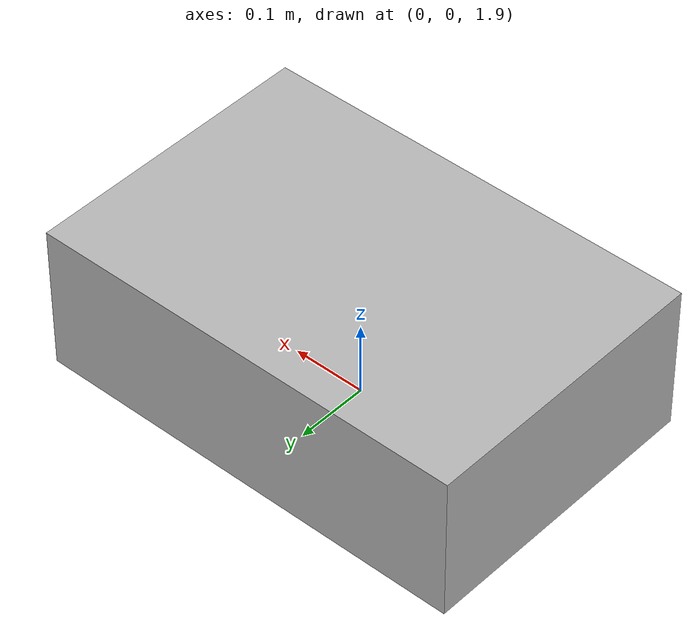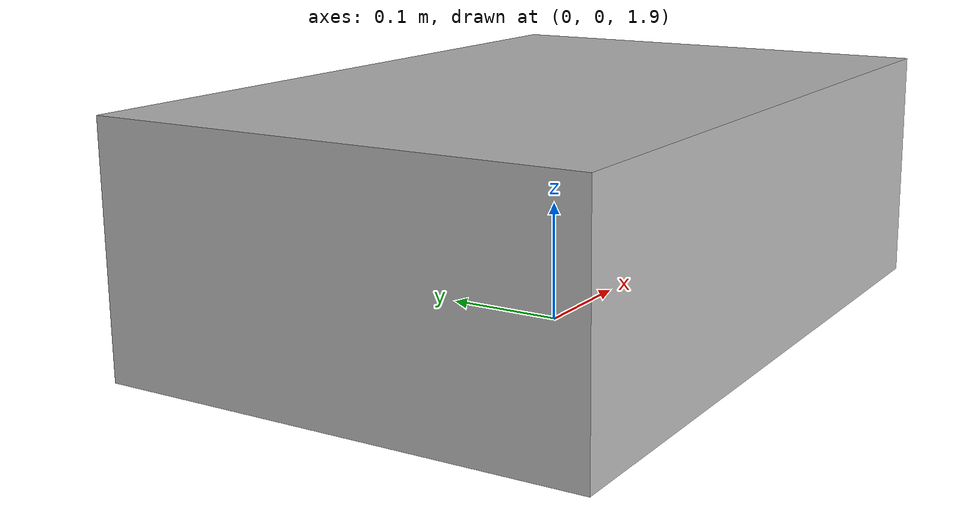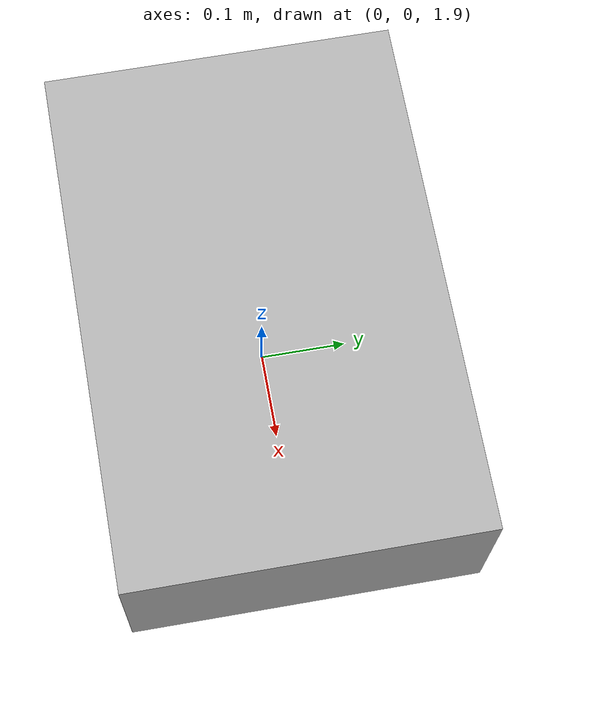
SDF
<?xml version="1.0" ?>
<sdf version="1.4">
  <world name="default">
    <include><uri>model://sun</uri></include>
    <physics type="rtql8">
      <gravity>0 0 -10.0</gravity>
      <ode>
        <solver>
          <type>quick</type>
          <dt>0.001</dt>
          <iters>10</iters>
          <sor>1.3</sor>
        </solver>
        <constraints>
          <cfm>0.0</cfm>
          <erp>0.2</erp>
          <contact_max_correcting_vel>100.0</contact_max_correcting_vel>
          <contact_surface_layer>0.0</contact_surface_layer>
        </constraints>
      </ode>
    </physics>
    <!-- 25.3kg total mass -->

    <model name="test_model">
      <pose>0 0 2 0 1.57 0</pose>
      <link name="link1">
        <pose>0 0 0 0 0 0</pose>
        <inertial>
          <inertia>
            <ixx>1</ixx>
            <ixy>0</ixy>
            <ixz>0</ixz>
            <iyy>1</iyy>
            <iyz>0</iyz>
            <izz>1</izz>
          </inertia>
          <mass>1.0</mass>
        </inertial>
        <visual name="visual">
          <pose>0 0 0 0 0 0</pose>
          <geometry>
            <box>
              <size>0.2 0.4 0.6</size>
            </box>
          </geometry>
          <material>
            <script>Gazebo/WoodPallet</script>
          </material>
        </visual>
      </link>
      <joint name="joint01" type="revolute">
        <pose>0 -0.5 0 0 0 0</pose>
        <parent>world</parent>
        <child>link1</child>
        <axis>
          <xyz>1 0 0</xyz>
        </axis>
      </joint>
    </model>

  </world>
</sdf>
